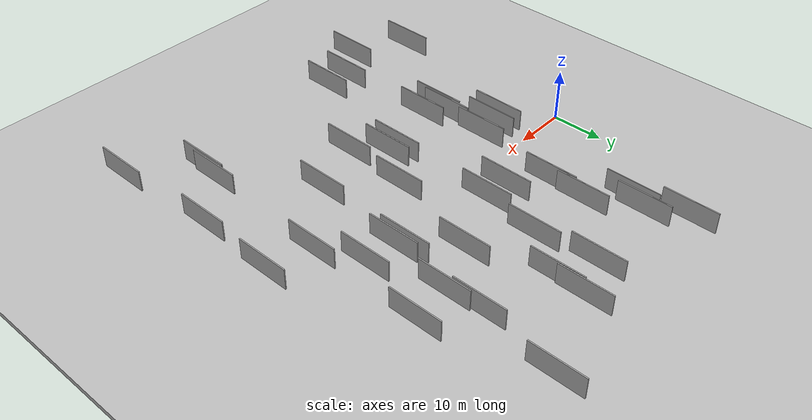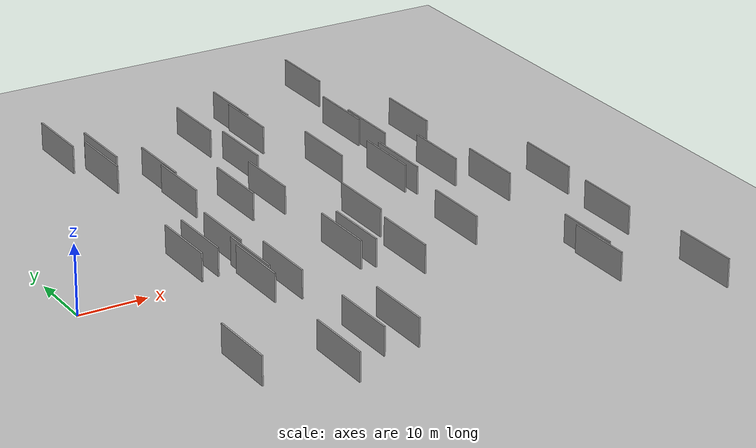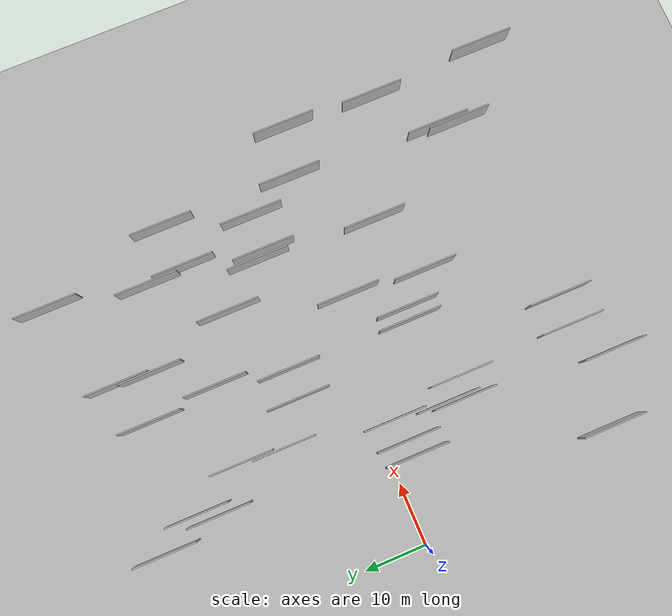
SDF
<?xml version="1.0" encoding="utf-8"?>

<sdf version="1.6">

   <world name="default">

      <gui fullscreen="0">

         <camera name="user_camera">

            <pose>-15 0 4.57585 0 0 0</pose>

            <view_controller>orbit</view_controller>

         </camera>

      </gui>

      <scene>

         <sky>

           <clouds>

             <speed>12</speed>

           </clouds>

         </sky>

         <ambient>0.4 0.4 0.4 1</ambient>

         <background>0.7 0.7 0.7 1</background>

         <shadows>1</shadows>

      </scene>

      <gravity>0 0 -9.8066</gravity>

      <magnetic_field>6e-06 2.3e-05 -4.2e-05</magnetic_field>

      <physics default="0" name="default_physics" type="ode">

         <ode>

            <solver>

               <type>quick</type>

               <iters>10</iters>

               <sor>1.0</sor>

               <use_dynamic_moi_rescaling>0</use_dynamic_moi_rescaling>

            </solver>

            <constraints>

               <cfm>0</cfm>

               <erp>0.2</erp>

               <contact_max_correcting_vel>100</contact_max_correcting_vel>

               <contact_surface_layer>0.001</contact_surface_layer>

            </constraints>

         </ode>

         <max_step_size>0.004</max_step_size>

         <real_time_factor>1</real_time_factor>

         <real_time_update_rate>250</real_time_update_rate>

      </physics>

      <light name="sun" type="directional">

         <cast_shadows>1</cast_shadows>

         <pose>0 0 10 0 0 0</pose>

         <diffuse>0.8 0.8 0.8 1</diffuse>

         <specular>0.2 0.2 0.2 1</specular>

         <attenuation>

            <range>1000</range>

            <constant>0.9</constant>

            <linear>0.01</linear>

            <quadratic>0.001</quadratic>

         </attenuation>

         <direction>-0.5 0.1 -0.9</direction>

      </light>

      <include>

         <name>ground_plane_1</name>

         <uri>model://HANNAS_ground_plane</uri>

         <pose>0 0 0  0 0 0</pose>

      </include>

      <include>

         <name>ground_plane_2</name>

         <uri>model://HANNAS_ground_plane</uri>

         <pose>100 0 0  0 0 0</pose>

      </include>

      <model name="HANNAS_wall_1">

         <static>1</static>

         <pose frame="">34.4496 -11.1289 5.0 0.000000 0.000000 1.570796</pose>

         <link name="link">

            <pose frame="">0 0 2.00 0 0 0</pose>

            <collision name="collision">

               <geometry>

                  <box>

                     <size>10.00 0.2 4.00</size>

                  </box>

               </geometry>

               <max_contacts>10</max_contacts>

               <surface>

                  <contact>

                     <ode/>

                  </contact>

                  <bounce/>

                  <friction>

                     <torsional>

                        <ode/>

                     </torsional>

                     <ode/>

                  </friction>

               </surface>

            </collision>

            <visual name="visual">

               <cast_shadows>0</cast_shadows>

               <geometry>

                  <box>

                     <size>10.00 0.2 4.00</size>

                  </box>

               </geometry>

               <material>

                  <script>

                     <uri>model://HANNAS_wall/materials/scripts</uri>

                     <uri>model://HANNAS_wall/materials/textures</uri>

                     <name>vrc/HANNAS_wall</name>

                  </script>

               </material>

            </visual>

            <self_collide>0</self_collide>

            <enable_wind>0</enable_wind>

            <kinematic>0</kinematic>

         </link>

      </model>

      <model name="HANNAS_wall_2">

         <static>1</static>

         <pose frame="">59.3019 -27.0658 5.0 0.000000 0.000000 1.570796</pose>

         <link name="link">

            <pose frame="">0 0 2.00 0 0 0</pose>

            <collision name="collision">

               <geometry>

                  <box>

                     <size>10.00 0.2 4.00</size>

                  </box>

               </geometry>

               <max_contacts>10</max_contacts>

               <surface>

                  <contact>

                     <ode/>

                  </contact>

                  <bounce/>

                  <friction>

                     <torsional>

                        <ode/>

                     </torsional>

                     <ode/>

                  </friction>

               </surface>

            </collision>

            <visual name="visual">

               <cast_shadows>0</cast_shadows>

               <geometry>

                  <box>

                     <size>10.00 0.2 4.00</size>

                  </box>

               </geometry>

               <material>

                  <script>

                     <uri>model://HANNAS_wall/materials/scripts</uri>

                     <uri>model://HANNAS_wall/materials/textures</uri>

                     <name>vrc/HANNAS_wall</name>

                  </script>

               </material>

            </visual>

            <self_collide>0</self_collide>

            <enable_wind>0</enable_wind>

            <kinematic>0</kinematic>

         </link>

      </model>

      <model name="HANNAS_wall_3">

         <static>1</static>

         <pose frame="">27.9781 9.4192 5.0 0.000000 0.000000 1.570796</pose>

         <link name="link">

            <pose frame="">0 0 2.00 0 0 0</pose>

            <collision name="collision">

               <geometry>

                  <box>

                     <size>10.00 0.2 4.00</size>

                  </box>

               </geometry>

               <max_contacts>10</max_contacts>

               <surface>

                  <contact>

                     <ode/>

                  </contact>

                  <bounce/>

                  <friction>

                     <torsional>

                        <ode/>

                     </torsional>

                     <ode/>

                  </friction>

               </surface>

            </collision>

            <visual name="visual">

               <cast_shadows>0</cast_shadows>

               <geometry>

                  <box>

                     <size>10.00 0.2 4.00</size>

                  </box>

               </geometry>

               <material>

                  <script>

                     <uri>model://HANNAS_wall/materials/scripts</uri>

                     <uri>model://HANNAS_wall/materials/textures</uri>

                     <name>vrc/HANNAS_wall</name>

                  </script>

               </material>

            </visual>

            <self_collide>0</self_collide>

            <enable_wind>0</enable_wind>

            <kinematic>0</kinematic>

         </link>

      </model>

      <model name="HANNAS_wall_4">

         <static>1</static>

         <pose frame="">15.9529 -3.3003 5.0 0.000000 0.000000 1.570796</pose>

         <link name="link">

            <pose frame="">0 0 2.00 0 0 0</pose>

            <collision name="collision">

               <geometry>

                  <box>

                     <size>10.00 0.2 4.00</size>

                  </box>

               </geometry>

               <max_contacts>10</max_contacts>

               <surface>

                  <contact>

                     <ode/>

                  </contact>

                  <bounce/>

                  <friction>

                     <torsional>

                        <ode/>

                     </torsional>

                     <ode/>

                  </friction>

               </surface>

            </collision>

            <visual name="visual">

               <cast_shadows>0</cast_shadows>

               <geometry>

                  <box>

                     <size>10.00 0.2 4.00</size>

                  </box>

               </geometry>

               <material>

                  <script>

                     <uri>model://HANNAS_wall/materials/scripts</uri>

                     <uri>model://HANNAS_wall/materials/textures</uri>

                     <name>vrc/HANNAS_wall</name>

                  </script>

               </material>

            </visual>

            <self_collide>0</self_collide>

            <enable_wind>0</enable_wind>

            <kinematic>0</kinematic>

         </link>

      </model>

      <model name="HANNAS_wall_5">

         <static>1</static>

         <pose frame="">52.8896 24.1935 5.0 0.000000 0.000000 1.570796</pose>

         <link name="link">

            <pose frame="">0 0 2.00 0 0 0</pose>

            <collision name="collision">

               <geometry>

                  <box>

                     <size>10.00 0.2 4.00</size>

                  </box>

               </geometry>

               <max_contacts>10</max_contacts>

               <surface>

                  <contact>

                     <ode/>

                  </contact>

                  <bounce/>

                  <friction>

                     <torsional>

                        <ode/>

                     </torsional>

                     <ode/>

                  </friction>

               </surface>

            </collision>

            <visual name="visual">

               <cast_shadows>0</cast_shadows>

               <geometry>

                  <box>

                     <size>10.00 0.2 4.00</size>

                  </box>

               </geometry>

               <material>

                  <script>

                     <uri>model://HANNAS_wall/materials/scripts</uri>

                     <uri>model://HANNAS_wall/materials/textures</uri>

                     <name>vrc/HANNAS_wall</name>

                  </script>

               </material>

            </visual>

            <self_collide>0</self_collide>

            <enable_wind>0</enable_wind>

            <kinematic>0</kinematic>

         </link>

      </model>

      <model name="HANNAS_wall_6">

         <static>1</static>

         <pose frame="">49.1046 -11.8776 5.0 0.000000 0.000000 1.570796</pose>

         <link name="link">

            <pose frame="">0 0 2.00 0 0 0</pose>

            <collision name="collision">

               <geometry>

                  <box>

                     <size>10.00 0.2 4.00</size>

                  </box>

               </geometry>

               <max_contacts>10</max_contacts>

               <surface>

                  <contact>

                     <ode/>

                  </contact>

                  <bounce/>

                  <friction>

                     <torsional>

                        <ode/>

                     </torsional>

                     <ode/>

                  </friction>

               </surface>

            </collision>

            <visual name="visual">

               <cast_shadows>0</cast_shadows>

               <geometry>

                  <box>

                     <size>10.00 0.2 4.00</size>

                  </box>

               </geometry>

               <material>

                  <script>

                     <uri>model://HANNAS_wall/materials/scripts</uri>

                     <uri>model://HANNAS_wall/materials/textures</uri>

                     <name>vrc/HANNAS_wall</name>

                  </script>

               </material>

            </visual>

            <self_collide>0</self_collide>

            <enable_wind>0</enable_wind>

            <kinematic>0</kinematic>

         </link>

      </model>

      <model name="HANNAS_wall_7">

         <static>1</static>

         <pose frame="">38.8114 -15.9270 5.0 0.000000 0.000000 1.570796</pose>

         <link name="link">

            <pose frame="">0 0 2.00 0 0 0</pose>

            <collision name="collision">

               <geometry>

                  <box>

                     <size>10.00 0.2 4.00</size>

                  </box>

               </geometry>

               <max_contacts>10</max_contacts>

               <surface>

                  <contact>

                     <ode/>

                  </contact>

                  <bounce/>

                  <friction>

                     <torsional>

                        <ode/>

                     </torsional>

                     <ode/>

                  </friction>

               </surface>

            </collision>

            <visual name="visual">

               <cast_shadows>0</cast_shadows>

               <geometry>

                  <box>

                     <size>10.00 0.2 4.00</size>

                  </box>

               </geometry>

               <material>

                  <script>

                     <uri>model://HANNAS_wall/materials/scripts</uri>

                     <uri>model://HANNAS_wall/materials/textures</uri>

                     <name>vrc/HANNAS_wall</name>

                  </script>

               </material>

            </visual>

            <self_collide>0</self_collide>

            <enable_wind>0</enable_wind>

            <kinematic>0</kinematic>

         </link>

      </model>

      <model name="HANNAS_wall_8">

         <static>1</static>

         <pose frame="">68.4907 -4.5874 5.0 0.000000 0.000000 1.570796</pose>

         <link name="link">

            <pose frame="">0 0 2.00 0 0 0</pose>

            <collision name="collision">

               <geometry>

                  <box>

                     <size>10.00 0.2 4.00</size>

                  </box>

               </geometry>

               <max_contacts>10</max_contacts>

               <surface>

                  <contact>

                     <ode/>

                  </contact>

                  <bounce/>

                  <friction>

                     <torsional>

                        <ode/>

                     </torsional>

                     <ode/>

                  </friction>

               </surface>

            </collision>

            <visual name="visual">

               <cast_shadows>0</cast_shadows>

               <geometry>

                  <box>

                     <size>10.00 0.2 4.00</size>

                  </box>

               </geometry>

               <material>

                  <script>

                     <uri>model://HANNAS_wall/materials/scripts</uri>

                     <uri>model://HANNAS_wall/materials/textures</uri>

                     <name>vrc/HANNAS_wall</name>

                  </script>

               </material>

            </visual>

            <self_collide>0</self_collide>

            <enable_wind>0</enable_wind>

            <kinematic>0</kinematic>

         </link>

      </model>

      <model name="HANNAS_wall_9">

         <static>1</static>

         <pose frame="">22.0133 14.1155 5.0 0.000000 0.000000 1.570796</pose>

         <link name="link">

            <pose frame="">0 0 2.00 0 0 0</pose>

            <collision name="collision">

               <geometry>

                  <box>

                     <size>10.00 0.2 4.00</size>

                  </box>

               </geometry>

               <max_contacts>10</max_contacts>

               <surface>

                  <contact>

                     <ode/>

                  </contact>

                  <bounce/>

                  <friction>

                     <torsional>

                        <ode/>

                     </torsional>

                     <ode/>

                  </friction>

               </surface>

            </collision>

            <visual name="visual">

               <cast_shadows>0</cast_shadows>

               <geometry>

                  <box>

                     <size>10.00 0.2 4.00</size>

                  </box>

               </geometry>

               <material>

                  <script>

                     <uri>model://HANNAS_wall/materials/scripts</uri>

                     <uri>model://HANNAS_wall/materials/textures</uri>

                     <name>vrc/HANNAS_wall</name>

                  </script>

               </material>

            </visual>

            <self_collide>0</self_collide>

            <enable_wind>0</enable_wind>

            <kinematic>0</kinematic>

         </link>

      </model>

      <model name="HANNAS_wall_10">

         <static>1</static>

         <pose frame="">34.5735 20.1763 5.0 0.000000 0.000000 1.570796</pose>

         <link name="link">

            <pose frame="">0 0 2.00 0 0 0</pose>

            <collision name="collision">

               <geometry>

                  <box>

                     <size>10.00 0.2 4.00</size>

                  </box>

               </geometry>

               <max_contacts>10</max_contacts>

               <surface>

                  <contact>

                     <ode/>

                  </contact>

                  <bounce/>

                  <friction>

                     <torsional>

                        <ode/>

                     </torsional>

                     <ode/>

                  </friction>

               </surface>

            </collision>

            <visual name="visual">

               <cast_shadows>0</cast_shadows>

               <geometry>

                  <box>

                     <size>10.00 0.2 4.00</size>

                  </box>

               </geometry>

               <material>

                  <script>

                     <uri>model://HANNAS_wall/materials/scripts</uri>

                     <uri>model://HANNAS_wall/materials/textures</uri>

                     <name>vrc/HANNAS_wall</name>

                  </script>

               </material>

            </visual>

            <self_collide>0</self_collide>

            <enable_wind>0</enable_wind>

            <kinematic>0</kinematic>

         </link>

      </model>

      <model name="HANNAS_wall_11">

         <static>1</static>

         <pose frame="">22.4324 20.7418 5.0 0.000000 0.000000 1.570796</pose>

         <link name="link">

            <pose frame="">0 0 2.00 0 0 0</pose>

            <collision name="collision">

               <geometry>

                  <box>

                     <size>10.00 0.2 4.00</size>

                  </box>

               </geometry>

               <max_contacts>10</max_contacts>

               <surface>

                  <contact>

                     <ode/>

                  </contact>

                  <bounce/>

                  <friction>

                     <torsional>

                        <ode/>

                     </torsional>

                     <ode/>

                  </friction>

               </surface>

            </collision>

            <visual name="visual">

               <cast_shadows>0</cast_shadows>

               <geometry>

                  <box>

                     <size>10.00 0.2 4.00</size>

                  </box>

               </geometry>

               <material>

                  <script>

                     <uri>model://HANNAS_wall/materials/scripts</uri>

                     <uri>model://HANNAS_wall/materials/textures</uri>

                     <name>vrc/HANNAS_wall</name>

                  </script>

               </material>

            </visual>

            <self_collide>0</self_collide>

            <enable_wind>0</enable_wind>

            <kinematic>0</kinematic>

         </link>

      </model>

      <model name="HANNAS_wall_12">

         <static>1</static>

         <pose frame="">50.0039 7.1209 5.0 0.000000 0.000000 1.570796</pose>

         <link name="link">

            <pose frame="">0 0 2.00 0 0 0</pose>

            <collision name="collision">

               <geometry>

                  <box>

                     <size>10.00 0.2 4.00</size>

                  </box>

               </geometry>

               <max_contacts>10</max_contacts>

               <surface>

                  <contact>

                     <ode/>

                  </contact>

                  <bounce/>

                  <friction>

                     <torsional>

                        <ode/>

                     </torsional>

                     <ode/>

                  </friction>

               </surface>

            </collision>

            <visual name="visual">

               <cast_shadows>0</cast_shadows>

               <geometry>

                  <box>

                     <size>10.00 0.2 4.00</size>

                  </box>

               </geometry>

               <material>

                  <script>

                     <uri>model://HANNAS_wall/materials/scripts</uri>

                     <uri>model://HANNAS_wall/materials/textures</uri>

                     <name>vrc/HANNAS_wall</name>

                  </script>

               </material>

            </visual>

            <self_collide>0</self_collide>

            <enable_wind>0</enable_wind>

            <kinematic>0</kinematic>

         </link>

      </model>

      <model name="HANNAS_wall_13">

         <static>1</static>

         <pose frame="">22.4586 -33.0070 5.0 0.000000 0.000000 1.570796</pose>

         <link name="link">

            <pose frame="">0 0 2.00 0 0 0</pose>

            <collision name="collision">

               <geometry>

                  <box>

                     <size>10.00 0.2 4.00</size>

                  </box>

               </geometry>

               <max_contacts>10</max_contacts>

               <surface>

                  <contact>

                     <ode/>

                  </contact>

                  <bounce/>

                  <friction>

                     <torsional>

                        <ode/>

                     </torsional>

                     <ode/>

                  </friction>

               </surface>

            </collision>

            <visual name="visual">

               <cast_shadows>0</cast_shadows>

               <geometry>

                  <box>

                     <size>10.00 0.2 4.00</size>

                  </box>

               </geometry>

               <material>

                  <script>

                     <uri>model://HANNAS_wall/materials/scripts</uri>

                     <uri>model://HANNAS_wall/materials/textures</uri>

                     <name>vrc/HANNAS_wall</name>

                  </script>

               </material>

            </visual>

            <self_collide>0</self_collide>

            <enable_wind>0</enable_wind>

            <kinematic>0</kinematic>

         </link>

      </model>

      <model name="HANNAS_wall_14">

         <static>1</static>

         <pose frame="">17.9981 29.4869 5.0 0.000000 0.000000 1.570796</pose>

         <link name="link">

            <pose frame="">0 0 2.00 0 0 0</pose>

            <collision name="collision">

               <geometry>

                  <box>

                     <size>10.00 0.2 4.00</size>

                  </box>

               </geometry>

               <max_contacts>10</max_contacts>

               <surface>

                  <contact>

                     <ode/>

                  </contact>

                  <bounce/>

                  <friction>

                     <torsional>

                        <ode/>

                     </torsional>

                     <ode/>

                  </friction>

               </surface>

            </collision>

            <visual name="visual">

               <cast_shadows>0</cast_shadows>

               <geometry>

                  <box>

                     <size>10.00 0.2 4.00</size>

                  </box>

               </geometry>

               <material>

                  <script>

                     <uri>model://HANNAS_wall/materials/scripts</uri>

                     <uri>model://HANNAS_wall/materials/textures</uri>

                     <name>vrc/HANNAS_wall</name>

                  </script>

               </material>

            </visual>

            <self_collide>0</self_collide>

            <enable_wind>0</enable_wind>

            <kinematic>0</kinematic>

         </link>

      </model>

      <model name="HANNAS_wall_15">

         <static>1</static>

         <pose frame="">16.5381 -37.2763 5.0 0.000000 0.000000 1.570796</pose>

         <link name="link">

            <pose frame="">0 0 2.00 0 0 0</pose>

            <collision name="collision">

               <geometry>

                  <box>

                     <size>10.00 0.2 4.00</size>

                  </box>

               </geometry>

               <max_contacts>10</max_contacts>

               <surface>

                  <contact>

                     <ode/>

                  </contact>

                  <bounce/>

                  <friction>

                     <torsional>

                        <ode/>

                     </torsional>

                     <ode/>

                  </friction>

               </surface>

            </collision>

            <visual name="visual">

               <cast_shadows>0</cast_shadows>

               <geometry>

                  <box>

                     <size>10.00 0.2 4.00</size>

                  </box>

               </geometry>

               <material>

                  <script>

                     <uri>model://HANNAS_wall/materials/scripts</uri>

                     <uri>model://HANNAS_wall/materials/textures</uri>

                     <name>vrc/HANNAS_wall</name>

                  </script>

               </material>

            </visual>

            <self_collide>0</self_collide>

            <enable_wind>0</enable_wind>

            <kinematic>0</kinematic>

         </link>

      </model>

      <model name="HANNAS_wall_16">

         <static>1</static>

         <pose frame="">58.7569 -30.4392 5.0 0.000000 0.000000 1.570796</pose>

         <link name="link">

            <pose frame="">0 0 2.00 0 0 0</pose>

            <collision name="collision">

               <geometry>

                  <box>

                     <size>10.00 0.2 4.00</size>

                  </box>

               </geometry>

               <max_contacts>10</max_contacts>

               <surface>

                  <contact>

                     <ode/>

                  </contact>

                  <bounce/>

                  <friction>

                     <torsional>

                        <ode/>

                     </torsional>

                     <ode/>

                  </friction>

               </surface>

            </collision>

            <visual name="visual">

               <cast_shadows>0</cast_shadows>

               <geometry>

                  <box>

                     <size>10.00 0.2 4.00</size>

                  </box>

               </geometry>

               <material>

                  <script>

                     <uri>model://HANNAS_wall/materials/scripts</uri>

                     <uri>model://HANNAS_wall/materials/textures</uri>

                     <name>vrc/HANNAS_wall</name>

                  </script>

               </material>

            </visual>

            <self_collide>0</self_collide>

            <enable_wind>0</enable_wind>

            <kinematic>0</kinematic>

         </link>

      </model>

      <model name="HANNAS_wall_17">

         <static>1</static>

         <pose frame="">53.4282 18.0994 5.0 0.000000 0.000000 1.570796</pose>

         <link name="link">

            <pose frame="">0 0 2.00 0 0 0</pose>

            <collision name="collision">

               <geometry>

                  <box>

                     <size>10.00 0.2 4.00</size>

                  </box>

               </geometry>

               <max_contacts>10</max_contacts>

               <surface>

                  <contact>

                     <ode/>

                  </contact>

                  <bounce/>

                  <friction>

                     <torsional>

                        <ode/>

                     </torsional>

                     <ode/>

                  </friction>

               </surface>

            </collision>

            <visual name="visual">

               <cast_shadows>0</cast_shadows>

               <geometry>

                  <box>

                     <size>10.00 0.2 4.00</size>

                  </box>

               </geometry>

               <material>

                  <script>

                     <uri>model://HANNAS_wall/materials/scripts</uri>

                     <uri>model://HANNAS_wall/materials/textures</uri>

                     <name>vrc/HANNAS_wall</name>

                  </script>

               </material>

            </visual>

            <self_collide>0</self_collide>

            <enable_wind>0</enable_wind>

            <kinematic>0</kinematic>

         </link>

      </model>

      <model name="HANNAS_wall_18">

         <static>1</static>

         <pose frame="">32.4896 -10.6881 5.0 0.000000 0.000000 1.570796</pose>

         <link name="link">

            <pose frame="">0 0 2.00 0 0 0</pose>

            <collision name="collision">

               <geometry>

                  <box>

                     <size>10.00 0.2 4.00</size>

                  </box>

               </geometry>

               <max_contacts>10</max_contacts>

               <surface>

                  <contact>

                     <ode/>

                  </contact>

                  <bounce/>

                  <friction>

                     <torsional>

                        <ode/>

                     </torsional>

                     <ode/>

                  </friction>

               </surface>

            </collision>

            <visual name="visual">

               <cast_shadows>0</cast_shadows>

               <geometry>

                  <box>

                     <size>10.00 0.2 4.00</size>

                  </box>

               </geometry>

               <material>

                  <script>

                     <uri>model://HANNAS_wall/materials/scripts</uri>

                     <uri>model://HANNAS_wall/materials/textures</uri>

                     <name>vrc/HANNAS_wall</name>

                  </script>

               </material>

            </visual>

            <self_collide>0</self_collide>

            <enable_wind>0</enable_wind>

            <kinematic>0</kinematic>

         </link>

      </model>

      <model name="HANNAS_wall_19">

         <static>1</static>

         <pose frame="">16.6630 26.5449 5.0 0.000000 0.000000 1.570796</pose>

         <link name="link">

            <pose frame="">0 0 2.00 0 0 0</pose>

            <collision name="collision">

               <geometry>

                  <box>

                     <size>10.00 0.2 4.00</size>

                  </box>

               </geometry>

               <max_contacts>10</max_contacts>

               <surface>

                  <contact>

                     <ode/>

                  </contact>

                  <bounce/>

                  <friction>

                     <torsional>

                        <ode/>

                     </torsional>

                     <ode/>

                  </friction>

               </surface>

            </collision>

            <visual name="visual">

               <cast_shadows>0</cast_shadows>

               <geometry>

                  <box>

                     <size>10.00 0.2 4.00</size>

                  </box>

               </geometry>

               <material>

                  <script>

                     <uri>model://HANNAS_wall/materials/scripts</uri>

                     <uri>model://HANNAS_wall/materials/textures</uri>

                     <name>vrc/HANNAS_wall</name>

                  </script>

               </material>

            </visual>

            <self_collide>0</self_collide>

            <enable_wind>0</enable_wind>

            <kinematic>0</kinematic>

         </link>

      </model>

      <model name="HANNAS_wall_20">

         <static>1</static>

         <pose frame="">40.3777 33.6962 5.0 0.000000 0.000000 1.570796</pose>

         <link name="link">

            <pose frame="">0 0 2.00 0 0 0</pose>

            <collision name="collision">

               <geometry>

                  <box>

                     <size>10.00 0.2 4.00</size>

                  </box>

               </geometry>

               <max_contacts>10</max_contacts>

               <surface>

                  <contact>

                     <ode/>

                  </contact>

                  <bounce/>

                  <friction>

                     <torsional>

                        <ode/>

                     </torsional>

                     <ode/>

                  </friction>

               </surface>

            </collision>

            <visual name="visual">

               <cast_shadows>0</cast_shadows>

               <geometry>

                  <box>

                     <size>10.00 0.2 4.00</size>

                  </box>

               </geometry>

               <material>

                  <script>

                     <uri>model://HANNAS_wall/materials/scripts</uri>

                     <uri>model://HANNAS_wall/materials/textures</uri>

                     <name>vrc/HANNAS_wall</name>

                  </script>

               </material>

            </visual>

            <self_collide>0</self_collide>

            <enable_wind>0</enable_wind>

            <kinematic>0</kinematic>

         </link>

      </model>

      <model name="HANNAS_wall_21">

         <static>1</static>

         <pose frame="">44.3203 14.2670 5.0 0.000000 0.000000 1.570796</pose>

         <link name="link">

            <pose frame="">0 0 2.00 0 0 0</pose>

            <collision name="collision">

               <geometry>

                  <box>

                     <size>10.00 0.2 4.00</size>

                  </box>

               </geometry>

               <max_contacts>10</max_contacts>

               <surface>

                  <contact>

                     <ode/>

                  </contact>

                  <bounce/>

                  <friction>

                     <torsional>

                        <ode/>

                     </torsional>

                     <ode/>

                  </friction>

               </surface>

            </collision>

            <visual name="visual">

               <cast_shadows>0</cast_shadows>

               <geometry>

                  <box>

                     <size>10.00 0.2 4.00</size>

                  </box>

               </geometry>

               <material>

                  <script>

                     <uri>model://HANNAS_wall/materials/scripts</uri>

                     <uri>model://HANNAS_wall/materials/textures</uri>

                     <name>vrc/HANNAS_wall</name>

                  </script>

               </material>

            </visual>

            <self_collide>0</self_collide>

            <enable_wind>0</enable_wind>

            <kinematic>0</kinematic>

         </link>

      </model>

      <model name="HANNAS_wall_22">

         <static>1</static>

         <pose frame="">69.1203 -38.8367 5.0 0.000000 0.000000 1.570796</pose>

         <link name="link">

            <pose frame="">0 0 2.00 0 0 0</pose>

            <collision name="collision">

               <geometry>

                  <box>

                     <size>10.00 0.2 4.00</size>

                  </box>

               </geometry>

               <max_contacts>10</max_contacts>

               <surface>

                  <contact>

                     <ode/>

                  </contact>

                  <bounce/>

                  <friction>

                     <torsional>

                        <ode/>

                     </torsional>

                     <ode/>

                  </friction>

               </surface>

            </collision>

            <visual name="visual">

               <cast_shadows>0</cast_shadows>

               <geometry>

                  <box>

                     <size>10.00 0.2 4.00</size>

                  </box>

               </geometry>

               <material>

                  <script>

                     <uri>model://HANNAS_wall/materials/scripts</uri>

                     <uri>model://HANNAS_wall/materials/textures</uri>

                     <name>vrc/HANNAS_wall</name>

                  </script>

               </material>

            </visual>

            <self_collide>0</self_collide>

            <enable_wind>0</enable_wind>

            <kinematic>0</kinematic>

         </link>

      </model>

      <model name="HANNAS_wall_23">

         <static>1</static>

         <pose frame="">18.4504 -13.5211 5.0 0.000000 0.000000 1.570796</pose>

         <link name="link">

            <pose frame="">0 0 2.00 0 0 0</pose>

            <collision name="collision">

               <geometry>

                  <box>

                     <size>10.00 0.2 4.00</size>

                  </box>

               </geometry>

               <max_contacts>10</max_contacts>

               <surface>

                  <contact>

                     <ode/>

                  </contact>

                  <bounce/>

                  <friction>

                     <torsional>

                        <ode/>

                     </torsional>

                     <ode/>

                  </friction>

               </surface>

            </collision>

            <visual name="visual">

               <cast_shadows>0</cast_shadows>

               <geometry>

                  <box>

                     <size>10.00 0.2 4.00</size>

                  </box>

               </geometry>

               <material>

                  <script>

                     <uri>model://HANNAS_wall/materials/scripts</uri>

                     <uri>model://HANNAS_wall/materials/textures</uri>

                     <name>vrc/HANNAS_wall</name>

                  </script>

               </material>

            </visual>

            <self_collide>0</self_collide>

            <enable_wind>0</enable_wind>

            <kinematic>0</kinematic>

         </link>

      </model>

      <model name="HANNAS_wall_24">

         <static>1</static>

         <pose frame="">19.5752 -2.6902 5.0 0.000000 0.000000 1.570796</pose>

         <link name="link">

            <pose frame="">0 0 2.00 0 0 0</pose>

            <collision name="collision">

               <geometry>

                  <box>

                     <size>10.00 0.2 4.00</size>

                  </box>

               </geometry>

               <max_contacts>10</max_contacts>

               <surface>

                  <contact>

                     <ode/>

                  </contact>

                  <bounce/>

                  <friction>

                     <torsional>

                        <ode/>

                     </torsional>

                     <ode/>

                  </friction>

               </surface>

            </collision>

            <visual name="visual">

               <cast_shadows>0</cast_shadows>

               <geometry>

                  <box>

                     <size>10.00 0.2 4.00</size>

                  </box>

               </geometry>

               <material>

                  <script>

                     <uri>model://HANNAS_wall/materials/scripts</uri>

                     <uri>model://HANNAS_wall/materials/textures</uri>

                     <name>vrc/HANNAS_wall</name>

                  </script>

               </material>

            </visual>

            <self_collide>0</self_collide>

            <enable_wind>0</enable_wind>

            <kinematic>0</kinematic>

         </link>

      </model>

      <model name="HANNAS_wall_25">

         <static>1</static>

         <pose frame="">14.4947 35.7516 5.0 0.000000 0.000000 1.570796</pose>

         <link name="link">

            <pose frame="">0 0 2.00 0 0 0</pose>

            <collision name="collision">

               <geometry>

                  <box>

                     <size>10.00 0.2 4.00</size>

                  </box>

               </geometry>

               <max_contacts>10</max_contacts>

               <surface>

                  <contact>

                     <ode/>

                  </contact>

                  <bounce/>

                  <friction>

                     <torsional>

                        <ode/>

                     </torsional>

                     <ode/>

                  </friction>

               </surface>

            </collision>

            <visual name="visual">

               <cast_shadows>0</cast_shadows>

               <geometry>

                  <box>

                     <size>10.00 0.2 4.00</size>

                  </box>

               </geometry>

               <material>

                  <script>

                     <uri>model://HANNAS_wall/materials/scripts</uri>

                     <uri>model://HANNAS_wall/materials/textures</uri>

                     <name>vrc/HANNAS_wall</name>

                  </script>

               </material>

            </visual>

            <self_collide>0</self_collide>

            <enable_wind>0</enable_wind>

            <kinematic>0</kinematic>

         </link>

      </model>

      <model name="HANNAS_wall_26">

         <static>1</static>

         <pose frame="">27.2730 -33.1386 5.0 0.000000 0.000000 1.570796</pose>

         <link name="link">

            <pose frame="">0 0 2.00 0 0 0</pose>

            <collision name="collision">

               <geometry>

                  <box>

                     <size>10.00 0.2 4.00</size>

                  </box>

               </geometry>

               <max_contacts>10</max_contacts>

               <surface>

                  <contact>

                     <ode/>

                  </contact>

                  <bounce/>

                  <friction>

                     <torsional>

                        <ode/>

                     </torsional>

                     <ode/>

                  </friction>

               </surface>

            </collision>

            <visual name="visual">

               <cast_shadows>0</cast_shadows>

               <geometry>

                  <box>

                     <size>10.00 0.2 4.00</size>

                  </box>

               </geometry>

               <material>

                  <script>

                     <uri>model://HANNAS_wall/materials/scripts</uri>

                     <uri>model://HANNAS_wall/materials/textures</uri>

                     <name>vrc/HANNAS_wall</name>

                  </script>

               </material>

            </visual>

            <self_collide>0</self_collide>

            <enable_wind>0</enable_wind>

            <kinematic>0</kinematic>

         </link>

      </model>

      <model name="HANNAS_wall_27">

         <static>1</static>

         <pose frame="">67.8254 -19.3882 5.0 0.000000 0.000000 1.570796</pose>

         <link name="link">

            <pose frame="">0 0 2.00 0 0 0</pose>

            <collision name="collision">

               <geometry>

                  <box>

                     <size>10.00 0.2 4.00</size>

                  </box>

               </geometry>

               <max_contacts>10</max_contacts>

               <surface>

                  <contact>

                     <ode/>

                  </contact>

                  <bounce/>

                  <friction>

                     <torsional>

                        <ode/>

                     </torsional>

                     <ode/>

                  </friction>

               </surface>

            </collision>

            <visual name="visual">

               <cast_shadows>0</cast_shadows>

               <geometry>

                  <box>

                     <size>10.00 0.2 4.00</size>

                  </box>

               </geometry>

               <material>

                  <script>

                     <uri>model://HANNAS_wall/materials/scripts</uri>

                     <uri>model://HANNAS_wall/materials/textures</uri>

                     <name>vrc/HANNAS_wall</name>

                  </script>

               </material>

            </visual>

            <self_collide>0</self_collide>

            <enable_wind>0</enable_wind>

            <kinematic>0</kinematic>

         </link>

      </model>

      <model name="HANNAS_wall_28">

         <static>1</static>

         <pose frame="">6.2863 -32.2509 5.0 0.000000 0.000000 1.570796</pose>

         <link name="link">

            <pose frame="">0 0 2.00 0 0 0</pose>

            <collision name="collision">

               <geometry>

                  <box>

                     <size>10.00 0.2 4.00</size>

                  </box>

               </geometry>

               <max_contacts>10</max_contacts>

               <surface>

                  <contact>

                     <ode/>

                  </contact>

                  <bounce/>

                  <friction>

                     <torsional>

                        <ode/>

                     </torsional>

                     <ode/>

                  </friction>

               </surface>

            </collision>

            <visual name="visual">

               <cast_shadows>0</cast_shadows>

               <geometry>

                  <box>

                     <size>10.00 0.2 4.00</size>

                  </box>

               </geometry>

               <material>

                  <script>

                     <uri>model://HANNAS_wall/materials/scripts</uri>

                     <uri>model://HANNAS_wall/materials/textures</uri>

                     <name>vrc/HANNAS_wall</name>

                  </script>

               </material>

            </visual>

            <self_collide>0</self_collide>

            <enable_wind>0</enable_wind>

            <kinematic>0</kinematic>

         </link>

      </model>

      <model name="HANNAS_wall_29">

         <static>1</static>

         <pose frame="">32.5846 9.0993 5.0 0.000000 0.000000 1.570796</pose>

         <link name="link">

            <pose frame="">0 0 2.00 0 0 0</pose>

            <collision name="collision">

               <geometry>

                  <box>

                     <size>10.00 0.2 4.00</size>

                  </box>

               </geometry>

               <max_contacts>10</max_contacts>

               <surface>

                  <contact>

                     <ode/>

                  </contact>

                  <bounce/>

                  <friction>

                     <torsional>

                        <ode/>

                     </torsional>

                     <ode/>

                  </friction>

               </surface>

            </collision>

            <visual name="visual">

               <cast_shadows>0</cast_shadows>

               <geometry>

                  <box>

                     <size>10.00 0.2 4.00</size>

                  </box>

               </geometry>

               <material>

                  <script>

                     <uri>model://HANNAS_wall/materials/scripts</uri>

                     <uri>model://HANNAS_wall/materials/textures</uri>

                     <name>vrc/HANNAS_wall</name>

                  </script>

               </material>

            </visual>

            <self_collide>0</self_collide>

            <enable_wind>0</enable_wind>

            <kinematic>0</kinematic>

         </link>

      </model>

      <model name="HANNAS_wall_30">

         <static>1</static>

         <pose frame="">13.4768 -3.6533 5.0 0.000000 0.000000 1.570796</pose>

         <link name="link">

            <pose frame="">0 0 2.00 0 0 0</pose>

            <collision name="collision">

               <geometry>

                  <box>

                     <size>10.00 0.2 4.00</size>

                  </box>

               </geometry>

               <max_contacts>10</max_contacts>

               <surface>

                  <contact>

                     <ode/>

                  </contact>

                  <bounce/>

                  <friction>

                     <torsional>

                        <ode/>

                     </torsional>

                     <ode/>

                  </friction>

               </surface>

            </collision>

            <visual name="visual">

               <cast_shadows>0</cast_shadows>

               <geometry>

                  <box>

                     <size>10.00 0.2 4.00</size>

                  </box>

               </geometry>

               <material>

                  <script>

                     <uri>model://HANNAS_wall/materials/scripts</uri>

                     <uri>model://HANNAS_wall/materials/textures</uri>

                     <name>vrc/HANNAS_wall</name>

                  </script>

               </material>

            </visual>

            <self_collide>0</self_collide>

            <enable_wind>0</enable_wind>

            <kinematic>0</kinematic>

         </link>

      </model>

      <model name="HANNAS_wall_31">

         <static>1</static>

         <pose frame="">40.0556 28.5133 5.0 0.000000 0.000000 1.570796</pose>

         <link name="link">

            <pose frame="">0 0 2.00 0 0 0</pose>

            <collision name="collision">

               <geometry>

                  <box>

                     <size>10.00 0.2 4.00</size>

                  </box>

               </geometry>

               <max_contacts>10</max_contacts>

               <surface>

                  <contact>

                     <ode/>

                  </contact>

                  <bounce/>

                  <friction>

                     <torsional>

                        <ode/>

                     </torsional>

                     <ode/>

                  </friction>

               </surface>

            </collision>

            <visual name="visual">

               <cast_shadows>0</cast_shadows>

               <geometry>

                  <box>

                     <size>10.00 0.2 4.00</size>

                  </box>

               </geometry>

               <material>

                  <script>

                     <uri>model://HANNAS_wall/materials/scripts</uri>

                     <uri>model://HANNAS_wall/materials/textures</uri>

                     <name>vrc/HANNAS_wall</name>

                  </script>

               </material>

            </visual>

            <self_collide>0</self_collide>

            <enable_wind>0</enable_wind>

            <kinematic>0</kinematic>

         </link>

      </model>

      <model name="HANNAS_wall_32">

         <static>1</static>

         <pose frame="">18.9903 -11.0794 5.0 0.000000 0.000000 1.570796</pose>

         <link name="link">

            <pose frame="">0 0 2.00 0 0 0</pose>

            <collision name="collision">

               <geometry>

                  <box>

                     <size>10.00 0.2 4.00</size>

                  </box>

               </geometry>

               <max_contacts>10</max_contacts>

               <surface>

                  <contact>

                     <ode/>

                  </contact>

                  <bounce/>

                  <friction>

                     <torsional>

                        <ode/>

                     </torsional>

                     <ode/>

                  </friction>

               </surface>

            </collision>

            <visual name="visual">

               <cast_shadows>0</cast_shadows>

               <geometry>

                  <box>

                     <size>10.00 0.2 4.00</size>

                  </box>

               </geometry>

               <material>

                  <script>

                     <uri>model://HANNAS_wall/materials/scripts</uri>

                     <uri>model://HANNAS_wall/materials/textures</uri>

                     <name>vrc/HANNAS_wall</name>

                  </script>

               </material>

            </visual>

            <self_collide>0</self_collide>

            <enable_wind>0</enable_wind>

            <kinematic>0</kinematic>

         </link>

      </model>

      <model name="HANNAS_wall_33">

         <static>1</static>

         <pose frame="">33.1978 31.1444 5.0 0.000000 0.000000 1.570796</pose>

         <link name="link">

            <pose frame="">0 0 2.00 0 0 0</pose>

            <collision name="collision">

               <geometry>

                  <box>

                     <size>10.00 0.2 4.00</size>

                  </box>

               </geometry>

               <max_contacts>10</max_contacts>

               <surface>

                  <contact>

                     <ode/>

                  </contact>

                  <bounce/>

                  <friction>

                     <torsional>

                        <ode/>

                     </torsional>

                     <ode/>

                  </friction>

               </surface>

            </collision>

            <visual name="visual">

               <cast_shadows>0</cast_shadows>

               <geometry>

                  <box>

                     <size>10.00 0.2 4.00</size>

                  </box>

               </geometry>

               <material>

                  <script>

                     <uri>model://HANNAS_wall/materials/scripts</uri>

                     <uri>model://HANNAS_wall/materials/textures</uri>

                     <name>vrc/HANNAS_wall</name>

                  </script>

               </material>

            </visual>

            <self_collide>0</self_collide>

            <enable_wind>0</enable_wind>

            <kinematic>0</kinematic>

         </link>

      </model>

      <model name="HANNAS_wall_34">

         <static>1</static>

         <pose frame="">21.8254 -14.3905 5.0 0.000000 0.000000 1.570796</pose>

         <link name="link">

            <pose frame="">0 0 2.00 0 0 0</pose>

            <collision name="collision">

               <geometry>

                  <box>

                     <size>10.00 0.2 4.00</size>

                  </box>

               </geometry>

               <max_contacts>10</max_contacts>

               <surface>

                  <contact>

                     <ode/>

                  </contact>

                  <bounce/>

                  <friction>

                     <torsional>

                        <ode/>

                     </torsional>

                     <ode/>

                  </friction>

               </surface>

            </collision>

            <visual name="visual">

               <cast_shadows>0</cast_shadows>

               <geometry>

                  <box>

                     <size>10.00 0.2 4.00</size>

                  </box>

               </geometry>

               <material>

                  <script>

                     <uri>model://HANNAS_wall/materials/scripts</uri>

                     <uri>model://HANNAS_wall/materials/textures</uri>

                     <name>vrc/HANNAS_wall</name>

                  </script>

               </material>

            </visual>

            <self_collide>0</self_collide>

            <enable_wind>0</enable_wind>

            <kinematic>0</kinematic>

         </link>

      </model>

      <model name="HANNAS_wall_35">

         <static>1</static>

         <pose frame="">51.0617 5.7978 5.0 0.000000 0.000000 1.570796</pose>

         <link name="link">

            <pose frame="">0 0 2.00 0 0 0</pose>

            <collision name="collision">

               <geometry>

                  <box>

                     <size>10.00 0.2 4.00</size>

                  </box>

               </geometry>

               <max_contacts>10</max_contacts>

               <surface>

                  <contact>

                     <ode/>

                  </contact>

                  <bounce/>

                  <friction>

                     <torsional>

                        <ode/>

                     </torsional>

                     <ode/>

                  </friction>

               </surface>

            </collision>

            <visual name="visual">

               <cast_shadows>0</cast_shadows>

               <geometry>

                  <box>

                     <size>10.00 0.2 4.00</size>

                  </box>

               </geometry>

               <material>

                  <script>

                     <uri>model://HANNAS_wall/materials/scripts</uri>

                     <uri>model://HANNAS_wall/materials/textures</uri>

                     <name>vrc/HANNAS_wall</name>

                  </script>

               </material>

            </visual>

            <self_collide>0</self_collide>

            <enable_wind>0</enable_wind>

            <kinematic>0</kinematic>

         </link>

      </model>

      <model name="HANNAS_wall_36">

         <static>1</static>

         <pose frame="">56.9710 5.4645 5.0 0.000000 0.000000 1.570796</pose>

         <link name="link">

            <pose frame="">0 0 2.00 0 0 0</pose>

            <collision name="collision">

               <geometry>

                  <box>

                     <size>10.00 0.2 4.00</size>

                  </box>

               </geometry>

               <max_contacts>10</max_contacts>

               <surface>

                  <contact>

                     <ode/>

                  </contact>

                  <bounce/>

                  <friction>

                     <torsional>

                        <ode/>

                     </torsional>

                     <ode/>

                  </friction>

               </surface>

            </collision>

            <visual name="visual">

               <cast_shadows>0</cast_shadows>

               <geometry>

                  <box>

                     <size>10.00 0.2 4.00</size>

                  </box>

               </geometry>

               <material>

                  <script>

                     <uri>model://HANNAS_wall/materials/scripts</uri>

                     <uri>model://HANNAS_wall/materials/textures</uri>

                     <name>vrc/HANNAS_wall</name>

                  </script>

               </material>

            </visual>

            <self_collide>0</self_collide>

            <enable_wind>0</enable_wind>

            <kinematic>0</kinematic>

         </link>

      </model>

      <model name="HANNAS_wall_37">

         <static>1</static>

         <pose frame="">60.5037 -2.3894 5.0 0.000000 0.000000 1.570796</pose>

         <link name="link">

            <pose frame="">0 0 2.00 0 0 0</pose>

            <collision name="collision">

               <geometry>

                  <box>

                     <size>10.00 0.2 4.00</size>

                  </box>

               </geometry>

               <max_contacts>10</max_contacts>

               <surface>

                  <contact>

                     <ode/>

                  </contact>

                  <bounce/>

                  <friction>

                     <torsional>

                        <ode/>

                     </torsional>

                     <ode/>

                  </friction>

               </surface>

            </collision>

            <visual name="visual">

               <cast_shadows>0</cast_shadows>

               <geometry>

                  <box>

                     <size>10.00 0.2 4.00</size>

                  </box>

               </geometry>

               <material>

                  <script>

                     <uri>model://HANNAS_wall/materials/scripts</uri>

                     <uri>model://HANNAS_wall/materials/textures</uri>

                     <name>vrc/HANNAS_wall</name>

                  </script>

               </material>

            </visual>

            <self_collide>0</self_collide>

            <enable_wind>0</enable_wind>

            <kinematic>0</kinematic>

         </link>

      </model>

      <model name="HANNAS_wall_38">

         <static>1</static>

         <pose frame="">55.3983 39.5495 5.0 0.000000 0.000000 1.570796</pose>

         <link name="link">

            <pose frame="">0 0 2.00 0 0 0</pose>

            <collision name="collision">

               <geometry>

                  <box>

                     <size>10.00 0.2 4.00</size>

                  </box>

               </geometry>

               <max_contacts>10</max_contacts>

               <surface>

                  <contact>

                     <ode/>

                  </contact>

                  <bounce/>

                  <friction>

                     <torsional>

                        <ode/>

                     </torsional>

                     <ode/>

                  </friction>

               </surface>

            </collision>

            <visual name="visual">

               <cast_shadows>0</cast_shadows>

               <geometry>

                  <box>

                     <size>10.00 0.2 4.00</size>

                  </box>

               </geometry>

               <material>

                  <script>

                     <uri>model://HANNAS_wall/materials/scripts</uri>

                     <uri>model://HANNAS_wall/materials/textures</uri>

                     <name>vrc/HANNAS_wall</name>

                  </script>

               </material>

            </visual>

            <self_collide>0</self_collide>

            <enable_wind>0</enable_wind>

            <kinematic>0</kinematic>

         </link>

      </model>

      <model name="HANNAS_wall_39">

         <static>1</static>

         <pose frame="">39.7208 -3.5431 5.0 0.000000 0.000000 1.570796</pose>

         <link name="link">

            <pose frame="">0 0 2.00 0 0 0</pose>

            <collision name="collision">

               <geometry>

                  <box>

                     <size>10.00 0.2 4.00</size>

                  </box>

               </geometry>

               <max_contacts>10</max_contacts>

               <surface>

                  <contact>

                     <ode/>

                  </contact>

                  <bounce/>

                  <friction>

                     <torsional>

                        <ode/>

                     </torsional>

                     <ode/>

                  </friction>

               </surface>

            </collision>

            <visual name="visual">

               <cast_shadows>0</cast_shadows>

               <geometry>

                  <box>

                     <size>10.00 0.2 4.00</size>

                  </box>

               </geometry>

               <material>

                  <script>

                     <uri>model://HANNAS_wall/materials/scripts</uri>

                     <uri>model://HANNAS_wall/materials/textures</uri>

                     <name>vrc/HANNAS_wall</name>

                  </script>

               </material>

            </visual>

            <self_collide>0</self_collide>

            <enable_wind>0</enable_wind>

            <kinematic>0</kinematic>

         </link>

      </model>

      <model name="HANNAS_wall_40">

         <static>1</static>

         <pose frame="">60.7034 18.9148 5.0 0.000000 0.000000 1.570796</pose>

         <link name="link">

            <pose frame="">0 0 2.00 0 0 0</pose>

            <collision name="collision">

               <geometry>

                  <box>

                     <size>10.00 0.2 4.00</size>

                  </box>

               </geometry>

               <max_contacts>10</max_contacts>

               <surface>

                  <contact>

                     <ode/>

                  </contact>

                  <bounce/>

                  <friction>

                     <torsional>

                        <ode/>

                     </torsional>

                     <ode/>

                  </friction>

               </surface>

            </collision>

            <visual name="visual">

               <cast_shadows>0</cast_shadows>

               <geometry>

                  <box>

                     <size>10.00 0.2 4.00</size>

                  </box>

               </geometry>

               <material>

                  <script>

                     <uri>model://HANNAS_wall/materials/scripts</uri>

                     <uri>model://HANNAS_wall/materials/textures</uri>

                     <name>vrc/HANNAS_wall</name>

                  </script>

               </material>

            </visual>

            <self_collide>0</self_collide>

            <enable_wind>0</enable_wind>

            <kinematic>0</kinematic>

         </link>

      </model>

   </world>

</sdf>
